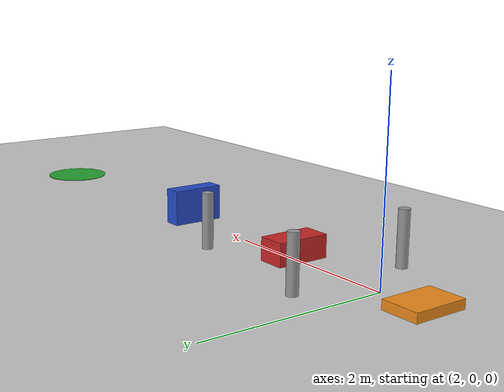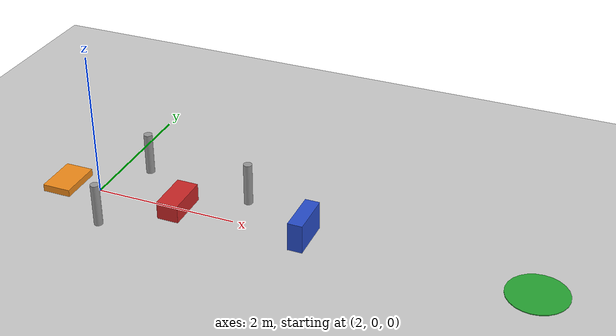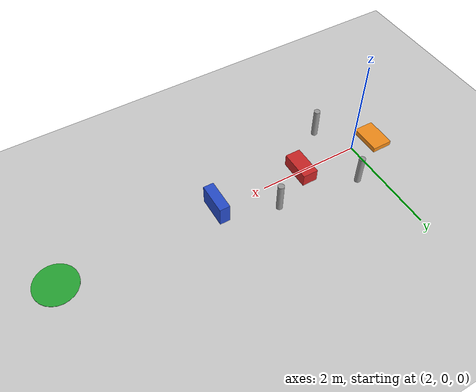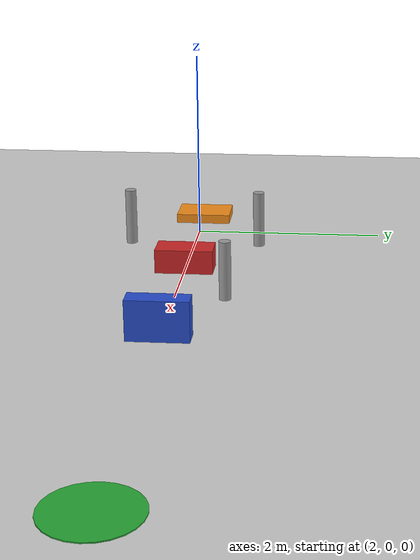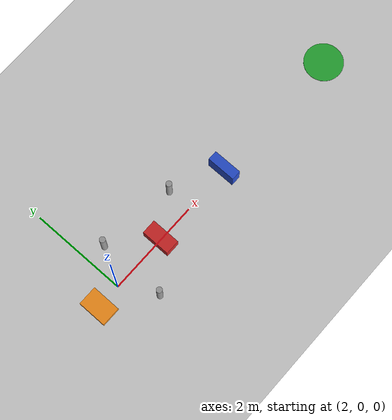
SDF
<?xml version="1.0" ?>
<sdf version="1.5">
    <world name="obstacles">
        <physics type="ode">
            <type>world</type>
            <max_step_size>0.001</max_step_size>
            <real_time_update_rate>1000</real_time_update_rate>
            <iters>500</iters>
        </physics>

        <include><uri>model://sun</uri></include>
        <include><uri>model://ground_plane</uri></include>

        <!-- ============ 障碍物：矮箱子（可跨过） ============ -->
        <model name="box_low_1">
            <static>true</static>
            <pose>1.5 0.0 0.05 0 0 0</pose>
            <link name="link">
                <collision name="collision">
                    <geometry><box><size>0.4 0.6 0.10</size></box></geometry>
                    <surface><friction><ode><mu>1.0</mu><mu2>1.0</mu2></ode></friction></surface>
                </collision>
                <visual name="visual">
                    <geometry><box><size>0.4 0.6 0.10</size></box></geometry>
                    <material><script><uri>file://media/materials/scripts/gazebo.material</uri>
                        <name>Gazebo/Orange</name></script></material>
                </visual>
            </link>
        </model>

        <!-- ============ 障碍物：中等箱子（需跳跃/绕行） ============ -->
        <model name="box_mid_1">
            <static>true</static>
            <pose>3.2 0.0 0.125 0 0 0</pose>
            <link name="link">
                <collision name="collision">
                    <geometry><box><size>0.3 0.6 0.25</size></box></geometry>
                    <surface><friction><ode><mu>1.0</mu><mu2>1.0</mu2></ode></friction></surface>
                </collision>
                <visual name="visual">
                    <geometry><box><size>0.3 0.6 0.25</size></box></geometry>
                    <material><script><uri>file://media/materials/scripts/gazebo.material</uri>
                        <name>Gazebo/Red</name></script></material>
                </visual>
            </link>
        </model>

        <!-- ============ 障碍物：高箱子（大概率摔倒，用于测试失败） ============ -->
        <model name="box_high_1">
            <static>true</static>
            <pose>5.0 0.0 0.2 0 0 0</pose>
            <link name="link">
                <collision name="collision">
                    <geometry><box><size>0.2 0.6 0.40</size></box></geometry>
                    <surface><friction><ode><mu>1.0</mu><mu2>1.0</mu2></ode></friction></surface>
                </collision>
                <visual name="visual">
                    <geometry><box><size>0.2 0.6 0.40</size></box></geometry>
                    <material><script><uri>file://media/materials/scripts/gazebo.material</uri>
                        <name>Gazebo/Blue</name></script></material>
                </visual>
            </link>
        </model>

        <!-- ============ 障碍物：柱子群（侧向避障） ============ -->
        <model name="pillar_1">
            <static>true</static>
            <pose>2.4 0.7 0.3 0 0 0</pose>
            <link name="link">
                <collision name="collision">
                    <geometry><cylinder><radius>0.06</radius><length>0.6</length></cylinder></geometry>
                    <surface><friction><ode><mu>1.0</mu><mu2>1.0</mu2></ode></friction></surface>
                </collision>
                <visual name="visual">
                    <geometry><cylinder><radius>0.06</radius><length>0.6</length></cylinder></geometry>
                    <material><script><uri>file://media/materials/scripts/gazebo.material</uri>
                        <name>Gazebo/Grey</name></script></material>
                </visual>
            </link>
        </model>

        <model name="pillar_2">
            <static>true</static>
            <pose>2.4 -0.7 0.3 0 0 0</pose>
            <link name="link">
                <collision name="collision">
                    <geometry><cylinder><radius>0.06</radius><length>0.6</length></cylinder></geometry>
                </collision>
                <visual name="visual">
                    <geometry><cylinder><radius>0.06</radius><length>0.6</length></cylinder></geometry>
                    <material><script><uri>file://media/materials/scripts/gazebo.material</uri>
                        <name>Gazebo/Grey</name></script></material>
                </visual>
            </link>
        </model>

        <model name="pillar_3">
            <static>true</static>
            <pose>4.0 0.5 0.3 0 0 0</pose>
            <link name="link">
                <collision name="collision">
                    <geometry><cylinder><radius>0.06</radius><length>0.6</length></cylinder></geometry>
                </collision>
                <visual name="visual">
                    <geometry><cylinder><radius>0.06</radius><length>0.6</length></cylinder></geometry>
                    <material><script><uri>file://media/materials/scripts/gazebo.material</uri>
                        <name>Gazebo/Grey</name></script></material>
                </visual>
            </link>
        </model>

        <!-- ============ 终点标记 ============ -->
        <model name="goal_marker">
            <static>true</static>
            <pose>8.0 0.0 0.005 0 0 0</pose>
            <link name="link">
                <visual name="visual">
                    <geometry><cylinder><radius>0.4</radius><length>0.01</length></cylinder></geometry>
                    <material><script><uri>file://media/materials/scripts/gazebo.material</uri>
                        <name>Gazebo/Green</name></script></material>
                </visual>
            </link>
        </model>

    </world>
</sdf>
